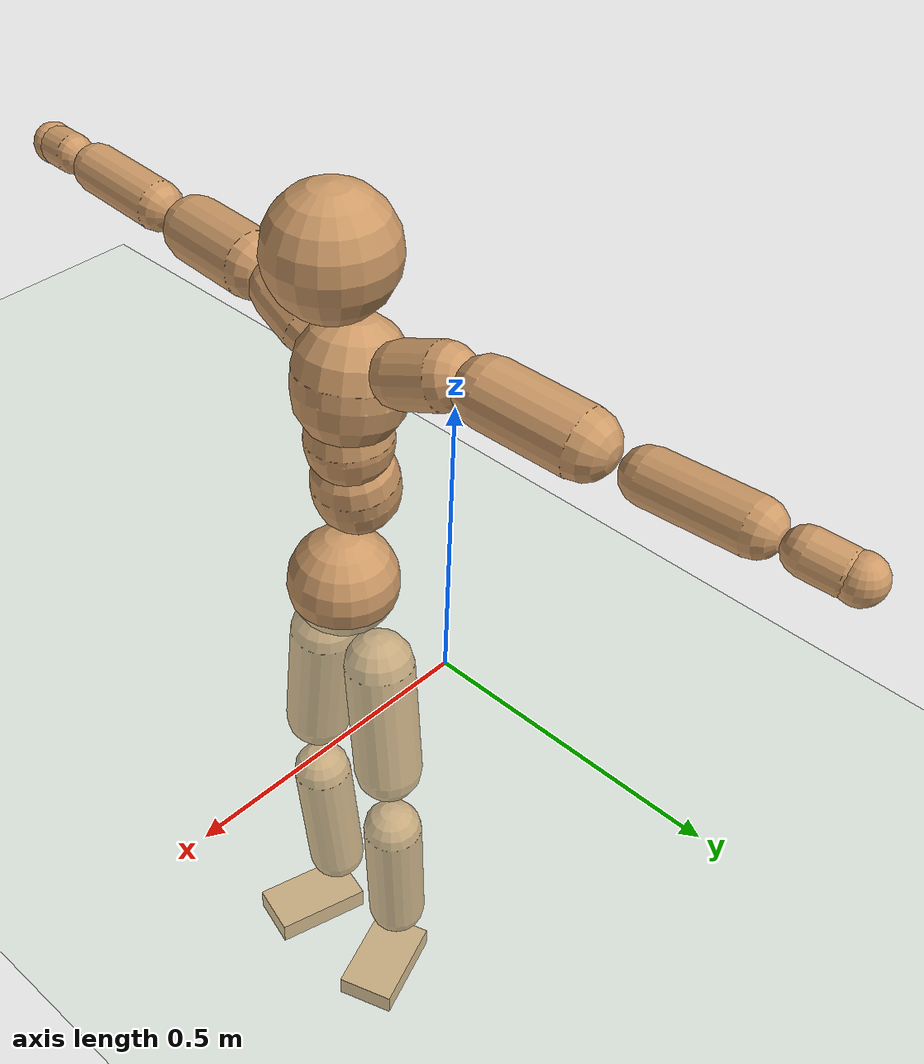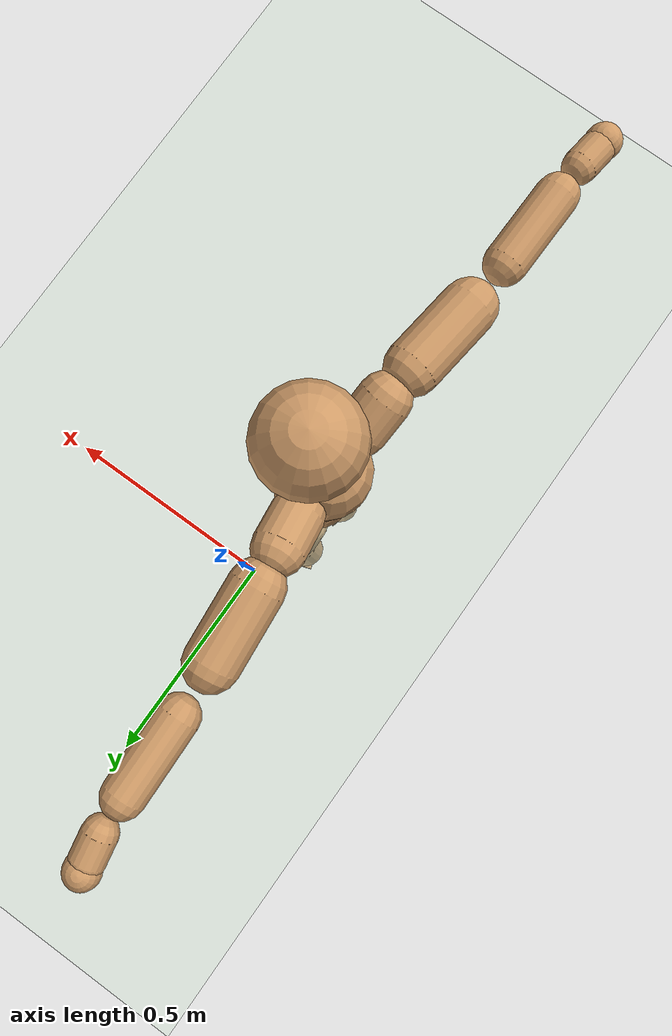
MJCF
<mujoco model="humanoid">
  <compiler coordinate="local"/>
  <default>
    <joint damping="0.0" armature="0.01" stiffness="0.0" limited="true"/>
    <geom conaffinity="1" condim="3" contype="7" margin="0.001" rgba="0.8 0.6 .4 1"/>
  </default>
  <asset>
    <texture type="skybox" builtin="gradient" rgb1=".4 .5 .6" rgb2="0 0 0" width="100" height="100"/>
    <texture builtin="flat" height="1278" mark="cross" markrgb="1 1 1" name="texgeom" random="0.01" rgb1="0.8 0.6 0.4" rgb2="0.8 0.6 0.4" type="cube" width="127"/>
    <texture builtin="checker" height="100" name="texplane" rgb1="0 0 0" rgb2="0.8 0.8 0.8" type="2d" width="100"/>
    <material name="MatPlane" reflectance="0.5" shininess="1" specular="1" texrepeat="60 60" texture="texplane"/>
    <material name="geom" texture="texgeom" texuniform="true"/>
  </asset>
  <worldbody>
    <light cutoff="100" diffuse="1 1 1" dir="-0 0 -1.3" directional="true" exponent="1" pos="0 0 1.3" specular=".1 .1 .1"/>
    <geom conaffinity="1" condim="3" name="floor" pos="0 0 0" rgba="0.8 0.9 0.8 1" size="100 100 .2" type="plane" material="MatPlane"/>
    <body name="Pelvis" pos="-0.0027 -0.2373 0.0282">
      <freejoint name="Pelvis"/>
      <geom type="sphere" contype="1" conaffinity="1" density="500" size="0.0962" pos="0.0000 0.0000 0.0000" name="Pelvis"/>
      <body name="L_Hip" pos="-0.0185 0.058 -0.0828">
        <joint name="L_Hip_x" type="hinge" pos="0 0 0" axis="1 0 0" stiffness="800" damping="80" armature="0.02" range="-180.0000 180.0000"/>
        <joint name="L_Hip_y" type="hinge" pos="0 0 0" axis="0 1 0" stiffness="800" damping="80" armature="0.02" range="-180.0000 180.0000"/>
        <joint name="L_Hip_z" type="hinge" pos="0 0 0" axis="0 0 1" stiffness="800" damping="80" armature="0.02" range="-180.0000 180.0000"/>
        <geom type="capsule" contype="1" conaffinity="1" density="500" fromto="0.0018 0.0093 -0.0808 0.0073 0.0373 -0.3234" size="0.0621" name="L_Hip"/>
        <body name="L_Knee" pos="0.0091 0.0466 -0.4042">
          <joint name="L_Knee_x" type="hinge" pos="0 0 0" axis="1 0 0" stiffness="800" damping="80" armature="0.02" range="-180.0000 180.0000"/>
          <joint name="L_Knee_y" type="hinge" pos="0 0 0" axis="0 1 0" stiffness="800" damping="80" armature="0.02" range="-180.0000 180.0000"/>
          <joint name="L_Knee_z" type="hinge" pos="0 0 0" axis="0 0 1" stiffness="800" damping="80" armature="0.02" range="-180.0000 180.0000"/>
          <geom type="capsule" contype="1" conaffinity="1" density="500" fromto="-0.0074 -0.0030 -0.0897 -0.0298 -0.0118 -0.3586" size="0.0552" name="L_Knee"/>
          <body name="L_Ankle" pos="-0.0372 -0.0148 -0.4483">
            <joint name="L_Ankle_x" type="hinge" pos="0 0 0" axis="1 0 0" stiffness="800" damping="80" armature="0.02" range="-180.0000 180.0000"/>
            <joint name="L_Ankle_y" type="hinge" pos="0 0 0" axis="0 1 0" stiffness="800" damping="80" armature="0.02" range="-180.0000 180.0000"/>
            <joint name="L_Ankle_z" type="hinge" pos="0 0 0" axis="0 0 1" stiffness="800" damping="80" armature="0.02" range="-180.0000 180.0000"/>
            <geom type="box" contype="1" conaffinity="1" density="500" pos="0.0623 0.0223 -0.0314" size="0.0905 0.054 0.0217" quat="0.9853 0.0000 0.0000 0.1709" name="L_Ankle"/>
            <body name="L_Toe" pos="0.1246 0.0446 -0.0628">
              <joint name="L_Toe_x" type="hinge" pos="0 0 0" axis="1 0 0" stiffness="500" damping="50" armature="0.02" range="-180.0000 180.0000"/>
              <joint name="L_Toe_y" type="hinge" pos="0 0 0" axis="0 1 0" stiffness="500" damping="50" armature="0.02" range="-180.0000 180.0000"/>
              <joint name="L_Toe_z" type="hinge" pos="0 0 0" axis="0 0 1" stiffness="500" damping="50" armature="0.02" range="-180.0000 180.0000"/>
              <geom type="box" contype="1" conaffinity="1" density="500" pos="0.0000 0.0000 0.0313" size="0.0011 0.0026 0.0011" quat="0.9845 0.0000 0.0000 0.1753" name="L_Toe"/>
            </body>
          </body>
        </body>
      </body>
      <body name="R_Hip" pos="-0.0145 -0.0595 -0.0912">
        <joint name="R_Hip_x" type="hinge" pos="0 0 0" axis="1 0 0" stiffness="800" damping="80" armature="0.02" range="-180.0000 180.0000"/>
        <joint name="R_Hip_y" type="hinge" pos="0 0 0" axis="0 1 0" stiffness="800" damping="80" armature="0.02" range="-180.0000 180.0000"/>
        <joint name="R_Hip_z" type="hinge" pos="0 0 0" axis="0 0 1" stiffness="800" damping="80" armature="0.02" range="-180.0000 180.0000"/>
        <geom type="capsule" contype="1" conaffinity="1" density="500" fromto="-0.0010 -0.0093 -0.0801 -0.0038 -0.0371 -0.3206" size="0.0614" name="R_Hip"/>
        <body name="R_Knee" pos="-0.0048 -0.0464 -0.4007">
          <joint name="R_Knee_x" type="hinge" pos="0 0 0" axis="1 0 0" stiffness="800" damping="80" armature="0.02" range="-180.0000 180.0000"/>
          <joint name="R_Knee_y" type="hinge" pos="0 0 0" axis="0 1 0" stiffness="800" damping="80" armature="0.02" range="-180.0000 180.0000"/>
          <joint name="R_Knee_z" type="hinge" pos="0 0 0" axis="0 0 1" stiffness="800" damping="80" armature="0.02" range="-180.0000 180.0000"/>
          <geom type="capsule" contype="1" conaffinity="1" density="500" fromto="-0.0069 0.0039 -0.0882 -0.0276 0.0155 -0.3530" size="0.0554" name="R_Knee"/>
          <body name="R_Ankle" pos="-0.0345 0.0194 -0.4412">
            <joint name="R_Ankle_x" type="hinge" pos="0 0 0" axis="1 0 0" stiffness="800" damping="80" armature="0.02" range="-180.0000 180.0000"/>
            <joint name="R_Ankle_y" type="hinge" pos="0 0 0" axis="0 1 0" stiffness="800" damping="80" armature="0.02" range="-180.0000 180.0000"/>
            <joint name="R_Ankle_z" type="hinge" pos="0 0 0" axis="0 0 1" stiffness="800" damping="80" armature="0.02" range="-180.0000 180.0000"/>
            <geom type="box" contype="1" conaffinity="1" density="500" pos="0.0667 -0.0182 -0.0323" size="0.0932 0.0517 0.0223" quat="0.9912 0.0000 0.0000 -0.1326" name="R_Ankle"/>
            <body name="R_Toe" pos="0.1334 -0.0364 -0.0647">
              <joint name="R_Toe_x" type="hinge" pos="0 0 0" axis="1 0 0" stiffness="500" damping="50" armature="0.02" range="-180.0000 180.0000"/>
              <joint name="R_Toe_y" type="hinge" pos="0 0 0" axis="0 1 0" stiffness="500" damping="50" armature="0.02" range="-180.0000 180.0000"/>
              <joint name="R_Toe_z" type="hinge" pos="0 0 0" axis="0 0 1" stiffness="500" damping="50" armature="0.02" range="-180.0000 180.0000"/>
              <geom type="box" contype="1" conaffinity="1" density="500" pos="0.0000 0.0000 0.0322" size="0.0011 0.0025 0.0011" quat="0.9923 0.0000 0.0000 -0.1239" name="R_Toe"/>
            </body>
          </body>
        </body>
      </body>
      <body name="Torso" pos="-0.0382 0.0047 0.1248">
        <joint name="Torso_x" type="hinge" pos="0 0 0" axis="1 0 0" stiffness="1000" damping="100" armature="0.02" range="-180.0000 180.0000"/>
        <joint name="Torso_y" type="hinge" pos="0 0 0" axis="0 1 0" stiffness="1000" damping="100" armature="0.02" range="-180.0000 180.0000"/>
        <joint name="Torso_z" type="hinge" pos="0 0 0" axis="0 0 1" stiffness="1000" damping="100" armature="0.02" range="-180.0000 180.0000"/>
        <geom type="capsule" contype="1" conaffinity="1" density="500" fromto="0.0159 0.0026 0.0826 0.0106 0.0017 0.0551" size="0.07347" name="Torso"/>
        <body name="Spine" pos="0.0265 0.0044 0.1377">
          <joint name="Spine_x" type="hinge" pos="0 0 0" axis="1 0 0" stiffness="1000" damping="100" armature="0.02" range="-180.0000 180.0000"/>
          <joint name="Spine_y" type="hinge" pos="0 0 0" axis="0 1 0" stiffness="1000" damping="100" armature="0.02" range="-180.0000 180.0000"/>
          <joint name="Spine_z" type="hinge" pos="0 0 0" axis="0 0 1" stiffness="1000" damping="100" armature="0.02" range="-180.0000 180.0000"/>
          <geom type="capsule" contype="1" conaffinity="1" density="500" fromto="0.0010 -0.0014 0.0336 0.0007 -0.0009 0.0224" size="0.072912" name="Spine"/>
          <body name="Chest" pos="0.0017 -0.0023 0.056">
            <joint name="Chest_x" type="hinge" pos="0 0 0" axis="1 0 0" stiffness="1000" damping="100" armature="0.02" range="-180.0000 180.0000"/>
            <joint name="Chest_y" type="hinge" pos="0 0 0" axis="0 1 0" stiffness="1000" damping="100" armature="0.02" range="-180.0000 180.0000"/>
            <joint name="Chest_z" type="hinge" pos="0 0 0" axis="0 0 1" stiffness="1000" damping="100" armature="0.02" range="-180.0000 180.0000"/>
            <geom type="capsule" contype="1" conaffinity="1" density="500" fromto="-0.0144 -0.0048 0.0887 -0.0096 -0.0032 0.0591" size="0.094581" name="Chest"/>
            <body name="Neck" pos="-0.0299 -0.0134 0.2143">
              <joint name="Neck_x" type="hinge" pos="0 0 0" axis="1 0 0" stiffness="500" damping="50" armature="0.02" range="-180.0000 180.0000"/>
              <joint name="Neck_y" type="hinge" pos="0 0 0" axis="0 1 0" stiffness="500" damping="50" armature="0.02" range="-180.0000 180.0000"/>
              <joint name="Neck_z" type="hinge" pos="0 0 0" axis="0 0 1" stiffness="500" damping="50" armature="0.02" range="-180.0000 180.0000"/>
              <geom type="capsule" contype="1" conaffinity="1" density="500" fromto="0.0105 0.0021 0.0184 0.0418 0.0083 0.0736" size="0.042222" name="Neck"/>
              <body name="Head" pos="0.0523 0.0103 0.092">
                <joint name="Head_x" type="hinge" pos="0 0 0" axis="1 0 0" stiffness="500" damping="50" armature="0.02" range="-180.0000 180.0000"/>
                <joint name="Head_y" type="hinge" pos="0 0 0" axis="0 1 0" stiffness="500" damping="50" armature="0.02" range="-180.0000 180.0000"/>
                <joint name="Head_z" type="hinge" pos="0 0 0" axis="0 0 1" stiffness="500" damping="50" armature="0.02" range="-180.0000 180.0000"/>
                <geom type="sphere" contype="1" conaffinity="1" density="500" size="0.1048" pos="0.0000 0.0000 0.0000" name="Head"/>
              </body>
            </body>
            <body name="L_Thorax" pos="-0.0188 0.071 0.1154">
              <joint name="L_Thorax_x" type="hinge" pos="0 0 0" axis="1 0 0" stiffness="500" damping="50" armature="0.02" range="-180.0000 180.0000"/>
              <joint name="L_Thorax_y" type="hinge" pos="0 0 0" axis="0 1 0" stiffness="500" damping="50" armature="0.02" range="-180.0000 180.0000"/>
              <joint name="L_Thorax_z" type="hinge" pos="0 0 0" axis="0 0 1" stiffness="500" damping="50" armature="0.02" range="-180.0000 180.0000"/>
              <geom type="capsule" contype="1" conaffinity="1" density="500" fromto="-0.0036 0.0242 0.0092 -0.0144 0.0970 0.0369" size="0.0532" name="L_Thorax"/>
              <body name="L_Shoulder" pos="-0.018 0.1212 0.0462">
                <joint name="L_Shoulder_x" type="hinge" pos="0 0 0" axis="1 0 0" stiffness="500" damping="50" armature="0.02" range="-720.0000 720.0000"/>
                <joint name="L_Shoulder_y" type="hinge" pos="0 0 0" axis="0 1 0" stiffness="500" damping="50" armature="0.02" range="-720.0000 720.0000"/>
                <joint name="L_Shoulder_z" type="hinge" pos="0 0 0" axis="0 0 1" stiffness="500" damping="50" armature="0.02" range="-720.0000 720.0000"/>
                <geom type="capsule" contype="1" conaffinity="1" density="500" fromto="-0.0048 0.0530 -0.0035 -0.0190 0.2119 -0.0140" size="0.0552" name="L_Shoulder"/>
                <body name="L_Elbow" pos="-0.0238 0.2649 -0.0175">
                  <joint name="L_Elbow_x" type="hinge" pos="0 0 0" axis="1 0 0" stiffness="500" damping="50" armature="0.02" range="-720.0000 720.0000"/>
                  <joint name="L_Elbow_y" type="hinge" pos="0 0 0" axis="0 1 0" stiffness="500" damping="50" armature="0.02" range="-720.0000 720.0000"/>
                  <joint name="L_Elbow_z" type="hinge" pos="0 0 0" axis="0 0 1" stiffness="500" damping="50" armature="0.02" range="-720.0000 720.0000"/>
                  <geom type="capsule" contype="1" conaffinity="1" density="500" fromto="-0.0015 0.0550 0.0027 -0.0061 0.2199 0.0107" size="0.0426" name="L_Elbow"/>
                  <body name="L_Wrist" pos="-0.0076 0.2748 0.0134">
                    <joint name="L_Wrist_x" type="hinge" pos="0 0 0" axis="1 0 0" stiffness="300" damping="30" armature="0.02" range="-180.0000 180.0000"/>
                    <joint name="L_Wrist_y" type="hinge" pos="0 0 0" axis="0 1 0" stiffness="300" damping="30" armature="0.02" range="-180.0000 180.0000"/>
                    <joint name="L_Wrist_z" type="hinge" pos="0 0 0" axis="0 0 1" stiffness="300" damping="30" armature="0.02" range="-180.0000 180.0000"/>
                    <geom type="capsule" contype="1" conaffinity="1" density="500" fromto="-0.0032 0.0177 -0.0022 -0.0129 0.0710 -0.0087" size="0.0347" name="L_Wrist"/>
                    <body name="L_Hand" pos="-0.0161 0.0887 -0.0108">
                      <joint name="L_Hand_x" type="hinge" pos="0 0 0" axis="1 0 0" stiffness="300" damping="30" armature="0.02" range="-180.0000 180.0000"/>
                      <joint name="L_Hand_y" type="hinge" pos="0 0 0" axis="0 1 0" stiffness="300" damping="30" armature="0.02" range="-180.0000 180.0000"/>
                      <joint name="L_Hand_z" type="hinge" pos="0 0 0" axis="0 0 1" stiffness="300" damping="30" armature="0.02" range="-180.0000 180.0000"/>
                      <geom type="sphere" contype="1" conaffinity="1" density="500" size="0.0364" pos="0.0000 0.0000 0.0000" name="L_Hand"/>
                    </body>
                  </body>
                </body>
              </body>
            </body>
            <body name="R_Thorax" pos="-0.0235 -0.0818 0.1137">
              <joint name="R_Thorax_x" type="hinge" pos="0 0 0" axis="1 0 0" stiffness="500" damping="50" armature="0.02" range="-180.0000 180.0000"/>
              <joint name="R_Thorax_y" type="hinge" pos="0 0 0" axis="0 1 0" stiffness="500" damping="50" armature="0.02" range="-180.0000 180.0000"/>
              <joint name="R_Thorax_z" type="hinge" pos="0 0 0" axis="0 0 1" stiffness="500" damping="50" armature="0.02" range="-180.0000 180.0000"/>
              <geom type="capsule" contype="1" conaffinity="1" density="500" fromto="-0.0015 -0.0223 0.0096 -0.0060 -0.0892 0.0382" size="0.0533" name="R_Thorax"/>
              <body name="R_Shoulder" pos="-0.0075 -0.1116 0.0478">
                <joint name="R_Shoulder_x" type="hinge" pos="0 0 0" axis="1 0 0" stiffness="500" damping="50" armature="0.02" range="-720.0000 720.0000"/>
                <joint name="R_Shoulder_y" type="hinge" pos="0 0 0" axis="0 1 0" stiffness="500" damping="50" armature="0.02" range="-720.0000 720.0000"/>
                <joint name="R_Shoulder_z" type="hinge" pos="0 0 0" axis="0 0 1" stiffness="500" damping="50" armature="0.02" range="-720.0000 720.0000"/>
                <geom type="capsule" contype="1" conaffinity="1" density="500" fromto="-0.0063 -0.0537 -0.0034 -0.0253 -0.2150 -0.0138" size="0.056" name="R_Shoulder"/>
                <body name="R_Elbow" pos="-0.0316 -0.2687 -0.0172">
                  <joint name="R_Elbow_x" type="hinge" pos="0 0 0" axis="1 0 0" stiffness="500" damping="50" armature="0.02" range="-720.0000 720.0000"/>
                  <joint name="R_Elbow_y" type="hinge" pos="0 0 0" axis="0 1 0" stiffness="500" damping="50" armature="0.02" range="-720.0000 720.0000"/>
                  <joint name="R_Elbow_z" type="hinge" pos="0 0 0" axis="0 0 1" stiffness="500" damping="50" armature="0.02" range="-720.0000 720.0000"/>
                  <geom type="capsule" contype="1" conaffinity="1" density="500" fromto="-0.0013 -0.0557 0.0016 -0.0052 -0.2229 0.0065" size="0.0432" name="R_Elbow"/>
                  <body name="R_Wrist" pos="-0.0065 -0.2786 0.0081">
                    <joint name="R_Wrist_x" type="hinge" pos="0 0 0" axis="1 0 0" stiffness="300" damping="30" armature="0.02" range="-180.0000 180.0000"/>
                    <joint name="R_Wrist_y" type="hinge" pos="0 0 0" axis="0 1 0" stiffness="300" damping="30" armature="0.02" range="-180.0000 180.0000"/>
                    <joint name="R_Wrist_z" type="hinge" pos="0 0 0" axis="0 0 1" stiffness="300" damping="30" armature="0.02" range="-180.0000 180.0000"/>
                    <geom type="capsule" contype="1" conaffinity="1" density="500" fromto="-0.0021 -0.0181 -0.0018 -0.0084 -0.0723 -0.0070" size="0.0352" name="R_Wrist"/>
                    <body name="R_Hand" pos="-0.0104 -0.0903 -0.0088">
                      <joint name="R_Hand_x" type="hinge" pos="0 0 0" axis="1 0 0" stiffness="300" damping="30" armature="0.02" range="-180.0000 180.0000"/>
                      <joint name="R_Hand_y" type="hinge" pos="0 0 0" axis="0 1 0" stiffness="300" damping="30" armature="0.02" range="-180.0000 180.0000"/>
                      <joint name="R_Hand_z" type="hinge" pos="0 0 0" axis="0 0 1" stiffness="300" damping="30" armature="0.02" range="-180.0000 180.0000"/>
                      <geom type="sphere" contype="1" conaffinity="1" density="500" size="0.0367" pos="0.0000 0.0000 0.0000" name="R_Hand"/>
                    </body>
                  </body>
                </body>
              </body>
            </body>
          </body>
        </body>
      </body>
    </body>
  </worldbody>
  <actuator>
    <motor name="L_Hip_x" joint="L_Hip_x" gear="500"/>
    <motor name="L_Hip_y" joint="L_Hip_y" gear="500"/>
    <motor name="L_Hip_z" joint="L_Hip_z" gear="500"/>
    <motor name="L_Knee_x" joint="L_Knee_x" gear="500"/>
    <motor name="L_Knee_y" joint="L_Knee_y" gear="500"/>
    <motor name="L_Knee_z" joint="L_Knee_z" gear="500"/>
    <motor name="L_Ankle_x" joint="L_Ankle_x" gear="500"/>
    <motor name="L_Ankle_y" joint="L_Ankle_y" gear="500"/>
    <motor name="L_Ankle_z" joint="L_Ankle_z" gear="500"/>
    <motor name="L_Toe_x" joint="L_Toe_x" gear="500"/>
    <motor name="L_Toe_y" joint="L_Toe_y" gear="500"/>
    <motor name="L_Toe_z" joint="L_Toe_z" gear="500"/>
    <motor name="R_Hip_x" joint="R_Hip_x" gear="500"/>
    <motor name="R_Hip_y" joint="R_Hip_y" gear="500"/>
    <motor name="R_Hip_z" joint="R_Hip_z" gear="500"/>
    <motor name="R_Knee_x" joint="R_Knee_x" gear="500"/>
    <motor name="R_Knee_y" joint="R_Knee_y" gear="500"/>
    <motor name="R_Knee_z" joint="R_Knee_z" gear="500"/>
    <motor name="R_Ankle_x" joint="R_Ankle_x" gear="500"/>
    <motor name="R_Ankle_y" joint="R_Ankle_y" gear="500"/>
    <motor name="R_Ankle_z" joint="R_Ankle_z" gear="500"/>
    <motor name="R_Toe_x" joint="R_Toe_x" gear="500"/>
    <motor name="R_Toe_y" joint="R_Toe_y" gear="500"/>
    <motor name="R_Toe_z" joint="R_Toe_z" gear="500"/>
    <motor name="Torso_x" joint="Torso_x" gear="500"/>
    <motor name="Torso_y" joint="Torso_y" gear="500"/>
    <motor name="Torso_z" joint="Torso_z" gear="500"/>
    <motor name="Spine_x" joint="Spine_x" gear="500"/>
    <motor name="Spine_y" joint="Spine_y" gear="500"/>
    <motor name="Spine_z" joint="Spine_z" gear="500"/>
    <motor name="Chest_x" joint="Chest_x" gear="500"/>
    <motor name="Chest_y" joint="Chest_y" gear="500"/>
    <motor name="Chest_z" joint="Chest_z" gear="500"/>
    <motor name="Neck_x" joint="Neck_x" gear="500"/>
    <motor name="Neck_y" joint="Neck_y" gear="500"/>
    <motor name="Neck_z" joint="Neck_z" gear="500"/>
    <motor name="Head_x" joint="Head_x" gear="500"/>
    <motor name="Head_y" joint="Head_y" gear="500"/>
    <motor name="Head_z" joint="Head_z" gear="500"/>
    <motor name="L_Thorax_x" joint="L_Thorax_x" gear="500"/>
    <motor name="L_Thorax_y" joint="L_Thorax_y" gear="500"/>
    <motor name="L_Thorax_z" joint="L_Thorax_z" gear="500"/>
    <motor name="L_Shoulder_x" joint="L_Shoulder_x" gear="500"/>
    <motor name="L_Shoulder_y" joint="L_Shoulder_y" gear="500"/>
    <motor name="L_Shoulder_z" joint="L_Shoulder_z" gear="500"/>
    <motor name="L_Elbow_x" joint="L_Elbow_x" gear="500"/>
    <motor name="L_Elbow_y" joint="L_Elbow_y" gear="500"/>
    <motor name="L_Elbow_z" joint="L_Elbow_z" gear="500"/>
    <motor name="L_Wrist_x" joint="L_Wrist_x" gear="500"/>
    <motor name="L_Wrist_y" joint="L_Wrist_y" gear="500"/>
    <motor name="L_Wrist_z" joint="L_Wrist_z" gear="500"/>
    <motor name="L_Hand_x" joint="L_Hand_x" gear="500"/>
    <motor name="L_Hand_y" joint="L_Hand_y" gear="500"/>
    <motor name="L_Hand_z" joint="L_Hand_z" gear="500"/>
    <motor name="R_Thorax_x" joint="R_Thorax_x" gear="500"/>
    <motor name="R_Thorax_y" joint="R_Thorax_y" gear="500"/>
    <motor name="R_Thorax_z" joint="R_Thorax_z" gear="500"/>
    <motor name="R_Shoulder_x" joint="R_Shoulder_x" gear="500"/>
    <motor name="R_Shoulder_y" joint="R_Shoulder_y" gear="500"/>
    <motor name="R_Shoulder_z" joint="R_Shoulder_z" gear="500"/>
    <motor name="R_Elbow_x" joint="R_Elbow_x" gear="500"/>
    <motor name="R_Elbow_y" joint="R_Elbow_y" gear="500"/>
    <motor name="R_Elbow_z" joint="R_Elbow_z" gear="500"/>
    <motor name="R_Wrist_x" joint="R_Wrist_x" gear="500"/>
    <motor name="R_Wrist_y" joint="R_Wrist_y" gear="500"/>
    <motor name="R_Wrist_z" joint="R_Wrist_z" gear="500"/>
    <motor name="R_Hand_x" joint="R_Hand_x" gear="500"/>
    <motor name="R_Hand_y" joint="R_Hand_y" gear="500"/>
    <motor name="R_Hand_z" joint="R_Hand_z" gear="500"/>
  </actuator>
  <contact>
    <exclude body1="Torso" body2="Chest"/>
    <exclude body1="Head" body2="Chest"/>
    <exclude body1="R_Knee" body2="R_Toe"/>
    <exclude body1="R_Knee" body2="L_Ankle"/>
    <exclude body1="R_Knee" body2="L_Toe"/>
    <exclude body1="L_Knee" body2="L_Toe"/>
    <exclude body1="L_Knee" body2="R_Ankle"/>
    <exclude body1="L_Knee" body2="R_Toe"/>
    <exclude body1="L_Shoulder" body2="Chest"/>
    <exclude body1="R_Shoulder" body2="Chest"/>
  </contact>
  <sensor/>
  <size njmax="700" nconmax="700"/>
</mujoco>
